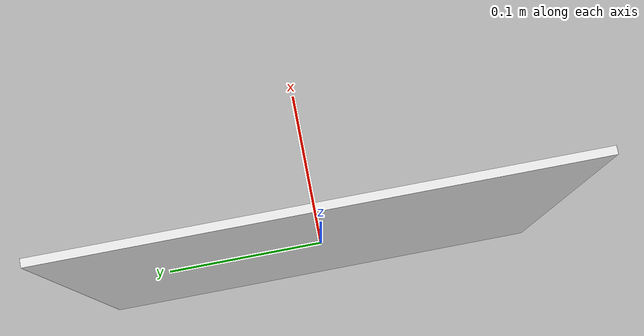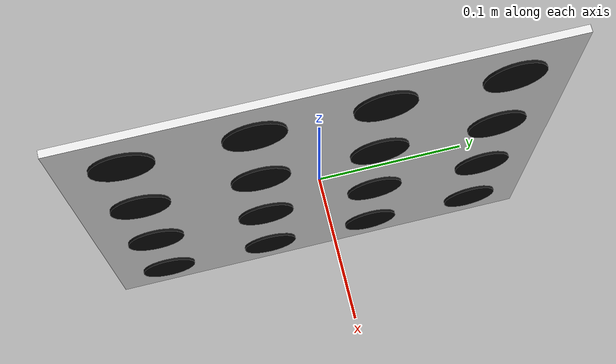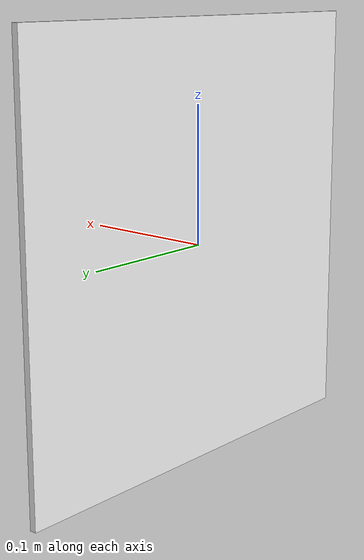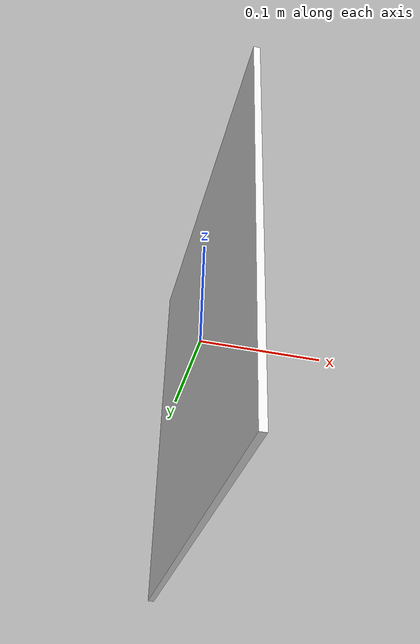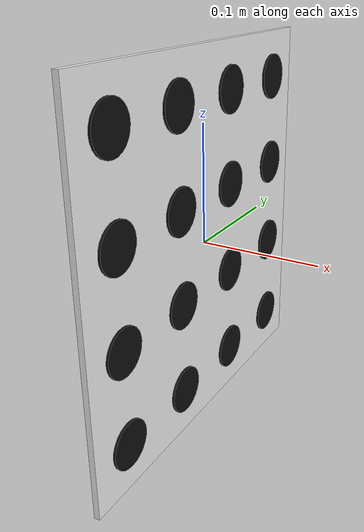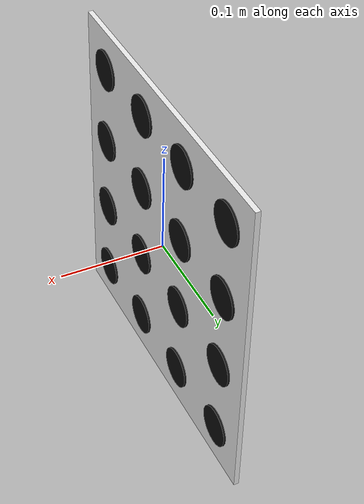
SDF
<?xml version='1.0' encoding='utf-8'?>
<sdf version="1.7">
  <model name="calibration_target">
    <static>true</static>
    <link name="link">
      <visual name="plate">
        <pose>0 0 0 0 0 0</pose>
        <geometry>
          <box>
            <size>0.005 0.3200 0.3200</size>
          </box>
        </geometry>
        <material>
          <ambient>0.92 0.92 0.92 1</ambient>
          <diffuse>0.92 0.92 0.92 1</diffuse>
          <specular>0.05 0.05 0.05 1</specular>
        </material>
        <cast_shadows>false</cast_shadows>
        <plugin filename="ignition-gazebo-thermal-system" name="ignition::gazebo::systems::Thermal">
          <temperature>288.15</temperature>
        </plugin>
      </visual>
      <collision name="collision">
        <geometry>
          <box>
            <size>0.005 0.3200 0.3200</size>
          </box>
        </geometry>
      </collision>
      <visual name="disc_0_0">
        <pose>0.0035 0.1200 0.1200 0 1.5707963 0</pose>
        <geometry>
          <cylinder>
            <radius>0.0200</radius>
            <length>0.0020</length>
          </cylinder>
        </geometry>
        <material>
          <ambient>0.05 0.05 0.05 1</ambient>
          <diffuse>0.05 0.05 0.05 1</diffuse>
          <specular>0.05 0.05 0.05 1</specular>
        </material>
        <cast_shadows>false</cast_shadows>
        <plugin filename="ignition-gazebo-thermal-system" name="ignition::gazebo::systems::Thermal">
          <temperature>308.15</temperature>
        </plugin>
      </visual>
      <visual name="disc_0_1">
        <pose>0.0035 0.0400 0.1200 0 1.5707963 0</pose>
        <geometry>
          <cylinder>
            <radius>0.0200</radius>
            <length>0.0020</length>
          </cylinder>
        </geometry>
        <material>
          <ambient>0.05 0.05 0.05 1</ambient>
          <diffuse>0.05 0.05 0.05 1</diffuse>
          <specular>0.05 0.05 0.05 1</specular>
        </material>
        <cast_shadows>false</cast_shadows>
        <plugin filename="ignition-gazebo-thermal-system" name="ignition::gazebo::systems::Thermal">
          <temperature>308.15</temperature>
        </plugin>
      </visual>
      <visual name="disc_0_2">
        <pose>0.0035 -0.0400 0.1200 0 1.5707963 0</pose>
        <geometry>
          <cylinder>
            <radius>0.0200</radius>
            <length>0.0020</length>
          </cylinder>
        </geometry>
        <material>
          <ambient>0.05 0.05 0.05 1</ambient>
          <diffuse>0.05 0.05 0.05 1</diffuse>
          <specular>0.05 0.05 0.05 1</specular>
        </material>
        <cast_shadows>false</cast_shadows>
        <plugin filename="ignition-gazebo-thermal-system" name="ignition::gazebo::systems::Thermal">
          <temperature>308.15</temperature>
        </plugin>
      </visual>
      <visual name="disc_0_3">
        <pose>0.0035 -0.1200 0.1200 0 1.5707963 0</pose>
        <geometry>
          <cylinder>
            <radius>0.0200</radius>
            <length>0.0020</length>
          </cylinder>
        </geometry>
        <material>
          <ambient>0.05 0.05 0.05 1</ambient>
          <diffuse>0.05 0.05 0.05 1</diffuse>
          <specular>0.05 0.05 0.05 1</specular>
        </material>
        <cast_shadows>false</cast_shadows>
        <plugin filename="ignition-gazebo-thermal-system" name="ignition::gazebo::systems::Thermal">
          <temperature>308.15</temperature>
        </plugin>
      </visual>
      <visual name="disc_1_0">
        <pose>0.0035 0.1200 0.0400 0 1.5707963 0</pose>
        <geometry>
          <cylinder>
            <radius>0.0200</radius>
            <length>0.0020</length>
          </cylinder>
        </geometry>
        <material>
          <ambient>0.05 0.05 0.05 1</ambient>
          <diffuse>0.05 0.05 0.05 1</diffuse>
          <specular>0.05 0.05 0.05 1</specular>
        </material>
        <cast_shadows>false</cast_shadows>
        <plugin filename="ignition-gazebo-thermal-system" name="ignition::gazebo::systems::Thermal">
          <temperature>308.15</temperature>
        </plugin>
      </visual>
      <visual name="disc_1_1">
        <pose>0.0035 0.0400 0.0400 0 1.5707963 0</pose>
        <geometry>
          <cylinder>
            <radius>0.0200</radius>
            <length>0.0020</length>
          </cylinder>
        </geometry>
        <material>
          <ambient>0.05 0.05 0.05 1</ambient>
          <diffuse>0.05 0.05 0.05 1</diffuse>
          <specular>0.05 0.05 0.05 1</specular>
        </material>
        <cast_shadows>false</cast_shadows>
        <plugin filename="ignition-gazebo-thermal-system" name="ignition::gazebo::systems::Thermal">
          <temperature>308.15</temperature>
        </plugin>
      </visual>
      <visual name="disc_1_2">
        <pose>0.0035 -0.0400 0.0400 0 1.5707963 0</pose>
        <geometry>
          <cylinder>
            <radius>0.0200</radius>
            <length>0.0020</length>
          </cylinder>
        </geometry>
        <material>
          <ambient>0.05 0.05 0.05 1</ambient>
          <diffuse>0.05 0.05 0.05 1</diffuse>
          <specular>0.05 0.05 0.05 1</specular>
        </material>
        <cast_shadows>false</cast_shadows>
        <plugin filename="ignition-gazebo-thermal-system" name="ignition::gazebo::systems::Thermal">
          <temperature>308.15</temperature>
        </plugin>
      </visual>
      <visual name="disc_1_3">
        <pose>0.0035 -0.1200 0.0400 0 1.5707963 0</pose>
        <geometry>
          <cylinder>
            <radius>0.0200</radius>
            <length>0.0020</length>
          </cylinder>
        </geometry>
        <material>
          <ambient>0.05 0.05 0.05 1</ambient>
          <diffuse>0.05 0.05 0.05 1</diffuse>
          <specular>0.05 0.05 0.05 1</specular>
        </material>
        <cast_shadows>false</cast_shadows>
        <plugin filename="ignition-gazebo-thermal-system" name="ignition::gazebo::systems::Thermal">
          <temperature>308.15</temperature>
        </plugin>
      </visual>
      <visual name="disc_2_0">
        <pose>0.0035 0.1200 -0.0400 0 1.5707963 0</pose>
        <geometry>
          <cylinder>
            <radius>0.0200</radius>
            <length>0.0020</length>
          </cylinder>
        </geometry>
        <material>
          <ambient>0.05 0.05 0.05 1</ambient>
          <diffuse>0.05 0.05 0.05 1</diffuse>
          <specular>0.05 0.05 0.05 1</specular>
        </material>
        <cast_shadows>false</cast_shadows>
        <plugin filename="ignition-gazebo-thermal-system" name="ignition::gazebo::systems::Thermal">
          <temperature>308.15</temperature>
        </plugin>
      </visual>
      <visual name="disc_2_1">
        <pose>0.0035 0.0400 -0.0400 0 1.5707963 0</pose>
        <geometry>
          <cylinder>
            <radius>0.0200</radius>
            <length>0.0020</length>
          </cylinder>
        </geometry>
        <material>
          <ambient>0.05 0.05 0.05 1</ambient>
          <diffuse>0.05 0.05 0.05 1</diffuse>
          <specular>0.05 0.05 0.05 1</specular>
        </material>
        <cast_shadows>false</cast_shadows>
        <plugin filename="ignition-gazebo-thermal-system" name="ignition::gazebo::systems::Thermal">
          <temperature>308.15</temperature>
        </plugin>
      </visual>
      <visual name="disc_2_2">
        <pose>0.0035 -0.0400 -0.0400 0 1.5707963 0</pose>
        <geometry>
          <cylinder>
            <radius>0.0200</radius>
            <length>0.0020</length>
          </cylinder>
        </geometry>
        <material>
          <ambient>0.05 0.05 0.05 1</ambient>
          <diffuse>0.05 0.05 0.05 1</diffuse>
          <specular>0.05 0.05 0.05 1</specular>
        </material>
        <cast_shadows>false</cast_shadows>
        <plugin filename="ignition-gazebo-thermal-system" name="ignition::gazebo::systems::Thermal">
          <temperature>308.15</temperature>
        </plugin>
      </visual>
      <visual name="disc_2_3">
        <pose>0.0035 -0.1200 -0.0400 0 1.5707963 0</pose>
        <geometry>
          <cylinder>
            <radius>0.0200</radius>
            <length>0.0020</length>
          </cylinder>
        </geometry>
        <material>
          <ambient>0.05 0.05 0.05 1</ambient>
          <diffuse>0.05 0.05 0.05 1</diffuse>
          <specular>0.05 0.05 0.05 1</specular>
        </material>
        <cast_shadows>false</cast_shadows>
        <plugin filename="ignition-gazebo-thermal-system" name="ignition::gazebo::systems::Thermal">
          <temperature>308.15</temperature>
        </plugin>
      </visual>
      <visual name="disc_3_0">
        <pose>0.0035 0.1200 -0.1200 0 1.5707963 0</pose>
        <geometry>
          <cylinder>
            <radius>0.0200</radius>
            <length>0.0020</length>
          </cylinder>
        </geometry>
        <material>
          <ambient>0.05 0.05 0.05 1</ambient>
          <diffuse>0.05 0.05 0.05 1</diffuse>
          <specular>0.05 0.05 0.05 1</specular>
        </material>
        <cast_shadows>false</cast_shadows>
        <plugin filename="ignition-gazebo-thermal-system" name="ignition::gazebo::systems::Thermal">
          <temperature>308.15</temperature>
        </plugin>
      </visual>
      <visual name="disc_3_1">
        <pose>0.0035 0.0400 -0.1200 0 1.5707963 0</pose>
        <geometry>
          <cylinder>
            <radius>0.0200</radius>
            <length>0.0020</length>
          </cylinder>
        </geometry>
        <material>
          <ambient>0.05 0.05 0.05 1</ambient>
          <diffuse>0.05 0.05 0.05 1</diffuse>
          <specular>0.05 0.05 0.05 1</specular>
        </material>
        <cast_shadows>false</cast_shadows>
        <plugin filename="ignition-gazebo-thermal-system" name="ignition::gazebo::systems::Thermal">
          <temperature>308.15</temperature>
        </plugin>
      </visual>
      <visual name="disc_3_2">
        <pose>0.0035 -0.0400 -0.1200 0 1.5707963 0</pose>
        <geometry>
          <cylinder>
            <radius>0.0200</radius>
            <length>0.0020</length>
          </cylinder>
        </geometry>
        <material>
          <ambient>0.05 0.05 0.05 1</ambient>
          <diffuse>0.05 0.05 0.05 1</diffuse>
          <specular>0.05 0.05 0.05 1</specular>
        </material>
        <cast_shadows>false</cast_shadows>
        <plugin filename="ignition-gazebo-thermal-system" name="ignition::gazebo::systems::Thermal">
          <temperature>308.15</temperature>
        </plugin>
      </visual>
      <visual name="disc_3_3">
        <pose>0.0035 -0.1200 -0.1200 0 1.5707963 0</pose>
        <geometry>
          <cylinder>
            <radius>0.0200</radius>
            <length>0.0020</length>
          </cylinder>
        </geometry>
        <material>
          <ambient>0.05 0.05 0.05 1</ambient>
          <diffuse>0.05 0.05 0.05 1</diffuse>
          <specular>0.05 0.05 0.05 1</specular>
        </material>
        <cast_shadows>false</cast_shadows>
        <plugin filename="ignition-gazebo-thermal-system" name="ignition::gazebo::systems::Thermal">
          <temperature>308.15</temperature>
        </plugin>
      </visual>
    </link>
  </model>
</sdf>
